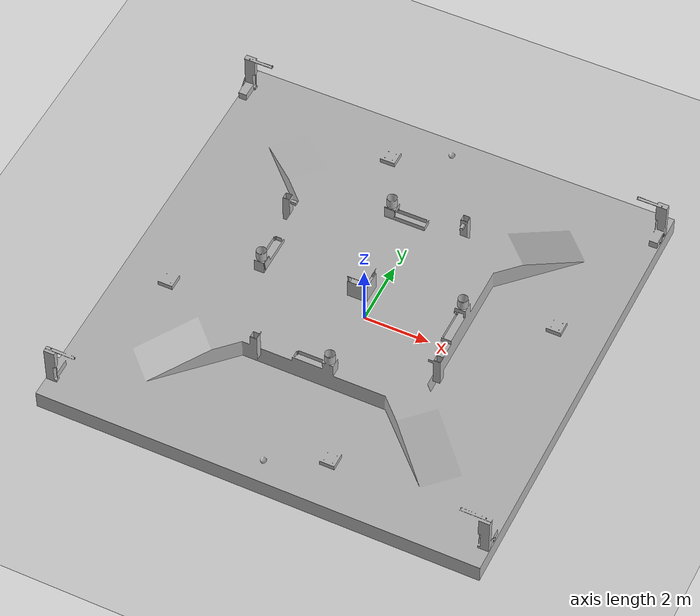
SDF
<?xml version="1.0"?>
<sdf version="1.4">
  <world name="default">
    <include>
      <uri>model://ground_plane</uri>
    </include>
    <include>
      <uri>model://sun</uri>
    </include>
    <model name="MRDC_field">
      <pose>13.75 -11.5 2  1.5708 0 0</pose>
      <static>true</static>
      <link name="body">
        <visual name="visual">
          <geometry>
            <mesh>
	      <scale>0.1 0.1 0.1</scale>
	      <uri>file://MRDC2017(0.1).dae</uri>
	    </mesh>
          </geometry>
        </visual>
      </link>
    </model>
  </world>
</sdf>

MRDC2017(0.1).dae is the one that works.
(Pose:160 -160 35  1.5708 0 0)
